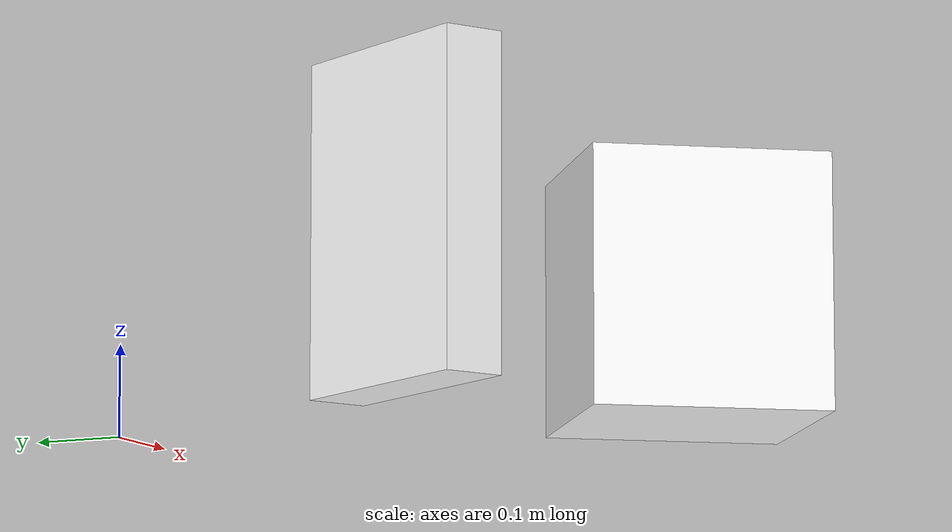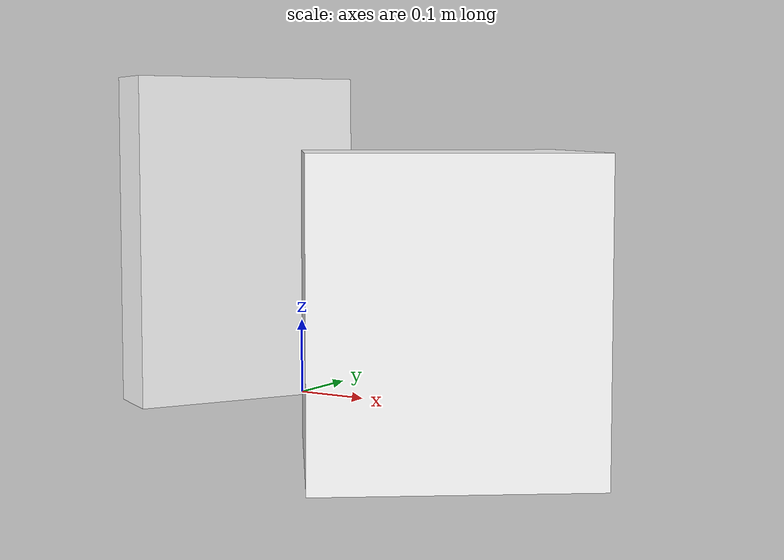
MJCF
<mujoco>
  <compiler angle="radian" />

  <visual>
    <headlight ambient="0.1 0.1 0.1" />
  </visual>

  <asset>
    <material name="white" rgba="1 1 1 1" />
    <material name="goal" rgba="0 0 0 0.3" />
  </asset>

  <option gravity="0 0 -9.8" />
  <worldbody>
    <body name="obj1" pos="0.11305489490475504 -0.28283367546734517 0.235" quat="0.25326247115480643 0.0 0.0 0.9673976021804896">
      <joint type="free" />
      <inertial pos="0 0 0" mass="1" diaginertia="0.01 0.01 0.01" />
      <geom type="box" size="0.035 0.13 0.185" material="white" />

    </body>

    <body name="obj2" pos="0.487711945583746 -0.44980299605208107 0.195" quat="0.44999942289767436 0.0 0.0 0.8930288457780969">
      <joint type="free" />
      <inertial pos="0 0 0" mass="1" diaginertia="0.01 0.01 0.01" />
      <geom type="box" size="0.135 0.13 0.145" material="white" />

    </body>

  </worldbody>
</mujoco>
